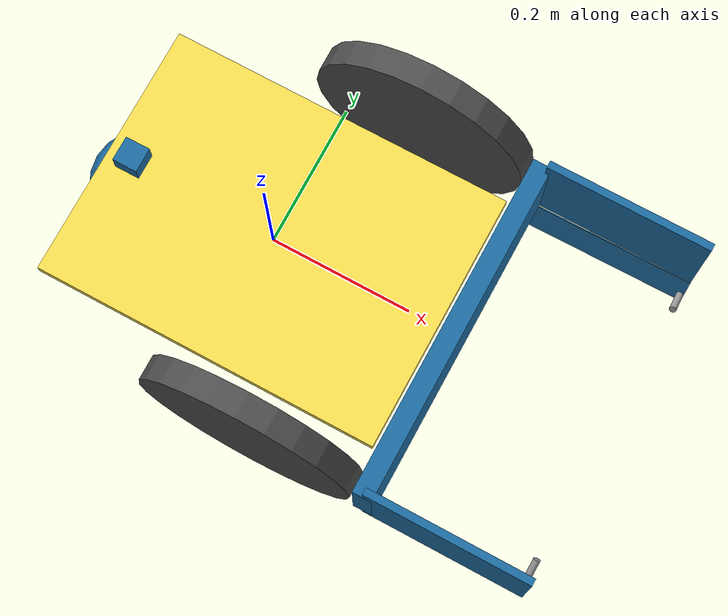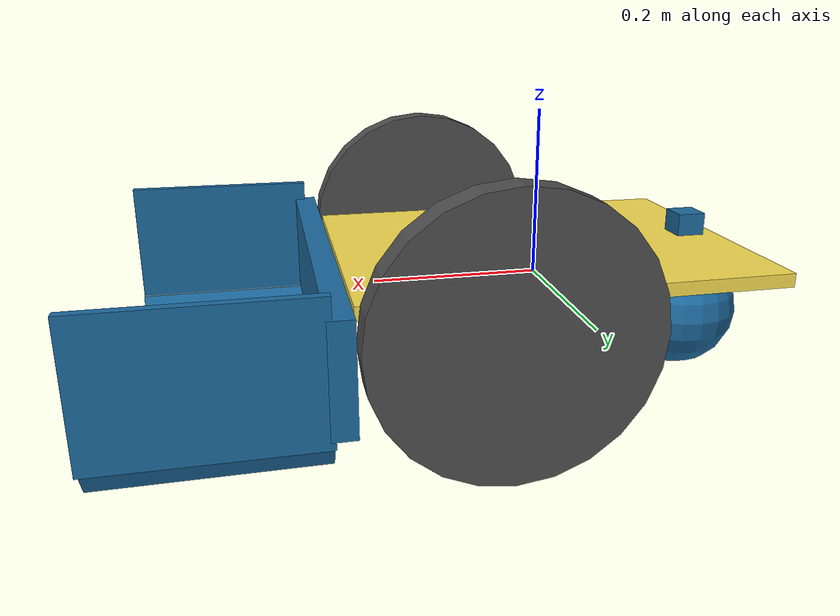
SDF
<?xml version='1.0'?>
<sdf version='1.6'>
  <model name='blue_1'>

    <include>
      <uri>model://minion</uri>
    </include>

    <plugin name='diff_drive' filename='libFRCBlueDiffDrivePlugin.so'>
      <topic>/blue/joy1</topic>
      <torque>2.0</torque>
      <turn_rate>1.3</turn_rate>
    </plugin>

    <plugin name='gripper' filename='libFRCBlueGripperPlugin.so'>
      <topic>/blue/joy1</topic>
      <left>minion::link_0_0_JOINT_3</left>
      <right>minion::link_0_0_JOINT_2</right>
      <up>minion::link_1_JOINT_4</up>
    </plugin>
  </model>
</sdf>

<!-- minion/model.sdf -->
<sdf version='1.6'>
  <model name='minion'>
    <link name='link_1'>
      <pose frame=''>0.003148 -0.001669 0.029855 0 -0 0</pose>
      <inertial>
        <mass>21.2305</mass>
        <inertia>
          <ixx>0.232716</ixx>
          <ixy>0</ixy>
          <ixz>0</ixz>
          <iyy>0.416476</iyy>
          <iyz>0</iyz>
          <izz>0.648297</izz>
        </inertia>
        <pose frame=''>0 0 0 0 -0 0</pose>
      </inertial>
      <self_collide>0</self_collide>
      <kinematic>0</kinematic>
      <enable_wind>0</enable_wind>
      <gravity>1</gravity>
      <visual name='visual'>
        <pose frame=''>0 0 0 0 -0 0</pose>
        <geometry>
          <box>
            <size>0.484922 0.362331 0.015899</size>
          </box>
        </geometry>
        <material>
          <lighting>1</lighting>
          <script>
            <uri>file://media/materials/scripts/gazebo.material</uri>
            <name>Gazebo/Grey</name>
          </script>
          <ambient>0.96 0.86 0.31 1</ambient>
          <diffuse>0.96 0.86 0.31 1</diffuse>
          <specular>0.96 0.86 0.31 1</specular>
          <emissive>0 0 0 1</emissive>
          <shader type='vertex'>
            <normal_map>__default__</normal_map>
          </shader>
        </material>
        <cast_shadows>1</cast_shadows>
        <transparency>0</transparency>
      </visual>
      <collision name='collision'>
        <laser_retro>0</laser_retro>
        <max_contacts>10</max_contacts>
        <pose frame=''>0 0 0 0 -0 0</pose>
        <geometry>
          <box>
            <size>0.484922 0.362331 0.015899</size>
          </box>
        </geometry>
        <surface>
          <friction>
            <ode>
              <mu>1</mu>
              <mu2>1</mu2>
              <fdir1>0 0 0</fdir1>
              <slip1>0</slip1>
              <slip2>0</slip2>
            </ode>
            <torsional>
              <coefficient>1</coefficient>
              <patch_radius>0</patch_radius>
              <surface_radius>0</surface_radius>
              <use_patch_radius>1</use_patch_radius>
              <ode>
                <slip>0</slip>
              </ode>
            </torsional>
          </friction>
          <bounce>
            <restitution_coefficient>0</restitution_coefficient>
            <threshold>1e+06</threshold>
          </bounce>
          <contact>
            <collide_without_contact>0</collide_without_contact>
            <collide_without_contact_bitmask>1</collide_without_contact_bitmask>
            <collide_bitmask>1</collide_bitmask>
            <ode>
              <kp>1e+8</kp>
              <kd>1</kd>
              <max_vel>10000.0</max_vel>
              <min_depth>0.002</min_depth>
            </ode>
            <bullet>
              <split_impulse>1</split_impulse>
              <split_impulse_penetration_threshold>-0.01</split_impulse_penetration_threshold>
              <soft_cfm>0</soft_cfm>
              <soft_erp>0.2</soft_erp>
              <kp>1e+13</kp>
              <kd>1</kd>
            </bullet>
          </contact>
        </surface>
      </collision>
    </link>
    <link name='link_0'>
      <inertial>
        <mass>30</mass>
        <inertia>
          <ixx>0.00599099</ixx>
          <ixy>0</ixy>
          <ixz>0</ixz>
          <iyy>0.00599099</iyy>
          <iyz>0</iyz>
          <izz>0.00599099</izz>
        </inertia>
        <pose frame=''>0 0 0 0 -0 0</pose>
      </inertial>
      <pose frame=''>-0.202994 -0.001415 0.048032 1e-06 -0.001232 -0.001231</pose>
      <gravity>1</gravity>
      <self_collide>0</self_collide>
      <kinematic>0</kinematic>
      <enable_wind>0</enable_wind>
      <visual name='visual'>
        <pose frame=''>0 0 0 0 -0 0</pose>
        <geometry>
          <box>
            <size>0.034615 0.034615 0.034615</size>
          </box>
        </geometry>
        <material>
          <lighting>1</lighting>
          <script>
            <uri>file://media/materials/scripts/gazebo.material</uri>
            <name>Gazebo/Grey</name>
          </script>
          <ambient>0.11 0.416 0.624 1</ambient>
          <diffuse>0.11 0.416 0.624 1</diffuse>
          <specular>0.11 0.416 0.624 1</specular>
          <emissive>0 0 0 1</emissive>
          <shader type='vertex'>
            <normal_map>__default__</normal_map>
          </shader>
        </material>
        <cast_shadows>1</cast_shadows>
        <transparency>0</transparency>
      </visual>
      <collision name='collision'>
        <laser_retro>0</laser_retro>
        <max_contacts>10</max_contacts>
        <pose frame=''>0 0 0 0 -0 0</pose>
        <geometry>
          <box>
            <size>0.034615 0.034615 0.034615</size>
          </box>
        </geometry>
        <surface>
          <friction>
            <ode>
              <mu>1</mu>
              <mu2>1</mu2>
              <fdir1>0 0 0</fdir1>
              <slip1>0</slip1>
              <slip2>0</slip2>
            </ode>
            <torsional>
              <coefficient>1</coefficient>
              <patch_radius>0</patch_radius>
              <surface_radius>0</surface_radius>
              <use_patch_radius>1</use_patch_radius>
              <ode>
                <slip>0</slip>
              </ode>
            </torsional>
          </friction>
          <bounce>
            <restitution_coefficient>0</restitution_coefficient>
            <threshold>1e+06</threshold>
          </bounce>
          <contact>
            <collide_without_contact>0</collide_without_contact>
            <collide_without_contact_bitmask>1</collide_without_contact_bitmask>
            <collide_bitmask>1</collide_bitmask>
            <ode>
              <soft_cfm>0</soft_cfm>
              <soft_erp>0.2</soft_erp>
              <kp>1e+13</kp>
              <kd>1</kd>
              <max_vel>0.01</max_vel>
              <min_depth>0</min_depth>
            </ode>
            <bullet>
              <split_impulse>1</split_impulse>
              <split_impulse_penetration_threshold>-0.01</split_impulse_penetration_threshold>
              <soft_cfm>0</soft_cfm>
              <soft_erp>0.2</soft_erp>
              <kp>1e+13</kp>
              <kd>1</kd>
            </bullet>
          </contact>
        </surface>
      </collision>
    </link>
    <link name='link_0_0'>
      <inertial>
        <mass>12.5433</mass>
        <inertia>
          <ixx>0.265335</ixx>
          <ixy>0</ixy>
          <ixz>0</ixz>
          <iyy>0.0163848</iyy>
          <iyz>0</iyz>
          <izz>0.250465</izz>
        </inertia>
        <pose frame=''>0 0 0 0 -0 0</pose>
      </inertial>
      <pose frame=''>0.264518 -0.001669 -0.011464 0 -0 0</pose>
      <gravity>1</gravity>
      <self_collide>0</self_collide>
      <kinematic>0</kinematic>
      <enable_wind>0</enable_wind>
      <visual name='visual'>
        <pose frame=''>0 0 0 0 -0 0</pose>
        <geometry>
          <box>
            <size>0.026908 0.488767 0.122274</size>
          </box>
        </geometry>
        <material>
          <lighting>1</lighting>
          <script>
            <uri>file://media/materials/scripts/gazebo.material</uri>
            <name>Gazebo/Grey</name>
          </script>
          <ambient>0.11 0.416 0.624 1</ambient>
          <diffuse>0.11 0.416 0.624 1</diffuse>
          <specular>0.11 0.416 0.624 1</specular>
          <emissive>0 0 0 1</emissive>
          <shader type='vertex'>
            <normal_map>__default__</normal_map>
          </shader>
        </material>
        <cast_shadows>1</cast_shadows>
        <transparency>0</transparency>
      </visual>
      <collision name='collision'>
        <laser_retro>0</laser_retro>
        <max_contacts>10</max_contacts>
        <pose frame=''>0 0 0 0 -0 0</pose>
        <geometry>
          <box>
            <size>0.026908 0.488767 0.122274</size>
          </box>
        </geometry>
        <surface>
          <friction>
            <ode>
              <mu>1</mu>
              <mu2>1</mu2>
              <fdir1>0 0 0</fdir1>
              <slip1>0</slip1>
              <slip2>0</slip2>
            </ode>
            <torsional>
              <coefficient>1</coefficient>
              <patch_radius>0</patch_radius>
              <surface_radius>0</surface_radius>
              <use_patch_radius>1</use_patch_radius>
              <ode>
                <slip>0</slip>
              </ode>
            </torsional>
          </friction>
          <bounce>
            <restitution_coefficient>0</restitution_coefficient>
            <threshold>1e+06</threshold>
          </bounce>
          <contact>
            <collide_without_contact>0</collide_without_contact>
            <collide_without_contact_bitmask>1</collide_without_contact_bitmask>
            <collide_bitmask>1</collide_bitmask>
            <ode>
              <soft_cfm>0</soft_cfm>
              <soft_erp>0.2</soft_erp>
              <kp>1e+13</kp>
              <kd>1</kd>
              <max_vel>0.01</max_vel>
              <min_depth>0</min_depth>
            </ode>
            <bullet>
              <split_impulse>1</split_impulse>
              <split_impulse_penetration_threshold>-0.01</split_impulse_penetration_threshold>
              <soft_cfm>0</soft_cfm>
              <soft_erp>0.2</soft_erp>
              <kp>1e+13</kp>
              <kd>1</kd>
            </bullet>
          </contact>
        </surface>
      </collision>
    </link>
    <link name='link_0_1'>
      <inertial>
        <mass>0.0191764</mass>
        <inertia>
          <ixx>1.77e-06</ixx>
          <ixy>0</ixy>
          <ixz>0</ixz>
          <iyy>1.77e-06</iyy>
          <iyz>0</iyz>
          <izz>2.3e-07</izz>
        </inertia>
        <pose frame=''>0 0 0 0 -0 0</pose>
      </inertial>
      <pose frame=''>0.492814 -0.206726 -0.095106 -1.03774 0.001803 0.005046</pose>
      <self_collide>0</self_collide>
      <enable_wind>0</enable_wind>
      <kinematic>0</kinematic>
      <gravity>1</gravity>
      <visual name='visual'>
        <pose frame=''>0 0 0 0 -0 0</pose>
        <geometry>
          <cylinder>
            <radius>0.00492896</radius>
            <length>0.0322109</length>
          </cylinder>
        </geometry>
        <material>
          <lighting>1</lighting>
          <script>
            <uri>file://media/materials/scripts/gazebo.material</uri>
            <name>Gazebo/Grey</name>
          </script>
          <ambient>0.3 0.3 0.3 1</ambient>
          <diffuse>0.1 0.1 0.1 1</diffuse>
          <specular>0.01 0.01 0.01 1</specular>
          <emissive>0 0 0 1</emissive>
          <shader type='vertex'>
            <normal_map>__default__</normal_map>
          </shader>
        </material>
        <cast_shadows>1</cast_shadows>
        <transparency>0</transparency>
      </visual>
      <collision name='collision'>
        <laser_retro>0</laser_retro>
        <max_contacts>10</max_contacts>
        <pose frame=''>0 0 0 0 -0 0</pose>
        <geometry>
          <cylinder>
            <radius>0.004929</radius>
            <length>0.032211</length>
          </cylinder>
        </geometry>
        <surface>
          <friction>
            <ode>
              <mu>1</mu>
              <mu2>1</mu2>
              <fdir1>0 0 0</fdir1>
              <slip1>0</slip1>
              <slip2>0</slip2>
            </ode>
            <torsional>
              <coefficient>1</coefficient>
              <patch_radius>0</patch_radius>
              <surface_radius>0</surface_radius>
              <use_patch_radius>1</use_patch_radius>
              <ode>
                <slip>0</slip>
              </ode>
            </torsional>
          </friction>
          <bounce>
            <restitution_coefficient>0</restitution_coefficient>
            <threshold>1e+06</threshold>
          </bounce>
          <contact>
            <collide_without_contact>0</collide_without_contact>
            <collide_without_contact_bitmask>1</collide_without_contact_bitmask>
            <collide_bitmask>1</collide_bitmask>
            <ode>
              <kp>1e+8</kp>
              <kd>1</kd>
              <max_vel>10000.0</max_vel>
              <min_depth>0.002</min_depth>
            </ode>
            <bullet>
              <split_impulse>1</split_impulse>
              <split_impulse_penetration_threshold>-0.01</split_impulse_penetration_threshold>
              <soft_cfm>0</soft_cfm>
              <soft_erp>0.2</soft_erp>
              <kp>1e+13</kp>
              <kd>1</kd>
            </bullet>
          </contact>
        </surface>
      </collision>
    </link>
    <link name='link_0_1_clone'>
      <inertial>
        <mass>0.0191764</mass>
        <inertia>
          <ixx>1.77e-06</ixx>
          <ixy>0</ixy>
          <ixz>0</ixz>
          <iyy>1.77e-06</iyy>
          <iyz>0</iyz>
          <izz>2.3e-07</izz>
        </inertia>
        <pose frame=''>0 0 0 0 -0 0</pose>
      </inertial>
      <pose frame=''>0.500276 0.203183 -0.094214 -2.10386 0.000574 0.00619</pose>
      <self_collide>0</self_collide>
      <enable_wind>0</enable_wind>
      <kinematic>0</kinematic>
      <gravity>1</gravity>
      <visual name='visual'>
        <pose frame=''>0 0 0 0 -0 0</pose>
        <geometry>
          <cylinder>
            <radius>0.00492896</radius>
            <length>0.0322109</length>
          </cylinder>
        </geometry>
        <material>
          <lighting>1</lighting>
          <script>
            <uri>file://media/materials/scripts/gazebo.material</uri>
            <name>Gazebo/Grey</name>
          </script>
          <ambient>0.3 0.3 0.3 1</ambient>
          <diffuse>0.1 0.1 0.1 1</diffuse>
          <specular>0.01 0.01 0.01 1</specular>
          <emissive>0 0 0 1</emissive>
          <shader type='pixel'>
            <normal_map>__default__</normal_map>
          </shader>
        </material>
        <cast_shadows>1</cast_shadows>
        <transparency>0</transparency>
      </visual>
      <collision name='collision'>
        <laser_retro>0</laser_retro>
        <max_contacts>10</max_contacts>
        <pose frame=''>0 0 0 0 -0 0</pose>
        <geometry>
          <cylinder>
            <radius>0.004929</radius>
            <length>0.032211</length>
          </cylinder>
        </geometry>
        <surface>
          <friction>
            <ode>
              <mu>1</mu>
              <mu2>1</mu2>
              <fdir1>0 0 0</fdir1>
              <slip1>0</slip1>
              <slip2>0</slip2>
            </ode>
            <torsional>
              <coefficient>1</coefficient>
              <patch_radius>0</patch_radius>
              <surface_radius>0</surface_radius>
              <use_patch_radius>1</use_patch_radius>
              <ode>
                <slip>0</slip>
              </ode>
            </torsional>
          </friction>
          <bounce>
            <restitution_coefficient>0</restitution_coefficient>
            <threshold>1e+06</threshold>
          </bounce>
          <contact>
            <collide_without_contact>0</collide_without_contact>
            <collide_without_contact_bitmask>1</collide_without_contact_bitmask>
            <collide_bitmask>1</collide_bitmask>
            <ode>
              <soft_cfm>0</soft_cfm>
              <soft_erp>0.2</soft_erp>
              <kp>1e+13</kp>
              <kd>1</kd>
              <max_vel>0.01</max_vel>
              <min_depth>0</min_depth>
            </ode>
            <bullet>
              <split_impulse>1</split_impulse>
              <split_impulse_penetration_threshold>-0.01</split_impulse_penetration_threshold>
              <soft_cfm>0</soft_cfm>
              <soft_erp>0.2</soft_erp>
              <kp>1e+13</kp>
              <kd>1</kd>
            </bullet>
          </contact>
        </surface>
      </collision>
    </link>
    <link name='link_1_0'>
      <inertial>
        <mass>2.86556</mass>
        <inertia>
          <ixx>0.0185877</ixx>
          <ixy>0</ixy>
          <ixz>0</ixz>
          <iyy>0.00570861</iyy>
          <iyz>0</iyz>
          <izz>0.0129292</izz>
        </inertia>
        <pose frame=''>0 0 0 0 -0 0</pose>
      </inertial>
      <pose frame=''>0.38151 -0.24093 -0.003563 0 -0 1.5708</pose>
      <gravity>1</gravity>
      <self_collide>0</self_collide>
      <kinematic>0</kinematic>
      <enable_wind>0</enable_wind>
      <visual name='visual'>
        <pose frame=''>0 0 0 0 -0 0</pose>
        <geometry>
          <box>
            <size>0.010244 0.232461 0.154275</size>
          </box>
        </geometry>
        <material>
          <lighting>1</lighting>
          <script>
            <uri>file://media/materials/scripts/gazebo.material</uri>
            <name>Gazebo/Grey</name>
          </script>
          <ambient>0.11 0.416 0.624 1</ambient>
          <diffuse>0.11 0.416 0.624 1</diffuse>
          <specular>0.11 0.416 0.624 1</specular>
          <emissive>0 0 0 1</emissive>
          <shader type='vertex'>
            <normal_map>__default__</normal_map>
          </shader>
        </material>
        <cast_shadows>1</cast_shadows>
        <transparency>0</transparency>
      </visual>
      <collision name='collision'>
        <laser_retro>0</laser_retro>
        <max_contacts>10</max_contacts>
        <pose frame=''>0 0 0 0 -0 0</pose>
        <geometry>
          <box>
            <size>0.010244 0.232461 0.154275</size>
          </box>
        </geometry>
        <surface>
          <friction>
            <ode>
              <mu>1</mu>
              <mu2>1</mu2>
              <fdir1>0 0 0</fdir1>
              <slip1>0</slip1>
              <slip2>0</slip2>
            </ode>
            <torsional>
              <coefficient>1</coefficient>
              <patch_radius>0</patch_radius>
              <surface_radius>0</surface_radius>
              <use_patch_radius>1</use_patch_radius>
              <ode>
                <slip>0</slip>
              </ode>
            </torsional>
          </friction>
          <bounce>
            <restitution_coefficient>0</restitution_coefficient>
            <threshold>1e+06</threshold>
          </bounce>
          <contact>
            <collide_without_contact>0</collide_without_contact>
            <collide_without_contact_bitmask>1</collide_without_contact_bitmask>
            <collide_bitmask>1</collide_bitmask>
            <ode>
              <soft_cfm>0</soft_cfm>
              <soft_erp>0.2</soft_erp>
              <kp>1e+13</kp>
              <kd>1</kd>
              <max_vel>0.01</max_vel>
              <min_depth>0</min_depth>
            </ode>
            <bullet>
              <split_impulse>1</split_impulse>
              <split_impulse_penetration_threshold>-0.01</split_impulse_penetration_threshold>
              <soft_cfm>0</soft_cfm>
              <soft_erp>0.2</soft_erp>
              <kp>1e+13</kp>
              <kd>1</kd>
            </bullet>
          </contact>
        </surface>
      </collision>
    </link>
    <link name='link_1_0_clone'>
      <inertial>
        <mass>2.86556</mass>
        <inertia>
          <ixx>0.0185877</ixx>
          <ixy>0</ixy>
          <ixz>0</ixz>
          <iyy>0.00570861</iyy>
          <iyz>0</iyz>
          <izz>0.0129292</izz>
        </inertia>
        <pose frame=''>0 0 0 0 -0 0</pose>
      </inertial>
      <pose frame=''>0.388851 0.237592 -0.003563 0 -0 1.5708</pose>
      <gravity>1</gravity>
      <self_collide>0</self_collide>
      <kinematic>0</kinematic>
      <enable_wind>0</enable_wind>
      <visual name='visual_0'>
        <pose frame=''>0 0 0 0 -0 0</pose>
        <geometry>
          <box>
            <size>0.010244 0.232461 0.154275</size>
          </box>
        </geometry>
        <material>
          <lighting>1</lighting>
          <script>
            <uri>file://media/materials/scripts/gazebo.material</uri>
            <name>Gazebo/Grey</name>
          </script>
          <ambient>0.11 0.416 0.624 1</ambient>
          <diffuse>0.11 0.416 0.624 1</diffuse>
          <specular>0.11 0.416 0.624 1</specular>
          <emissive>0 0 0 1</emissive>
          <shader type='vertex'>
            <normal_map>__default__</normal_map>
          </shader>
        </material>
        <cast_shadows>1</cast_shadows>
        <transparency>0</transparency>
      </visual>
      <collision name='collision'>
        <laser_retro>0</laser_retro>
        <max_contacts>10</max_contacts>
        <pose frame=''>0 0 0 0 -0 0</pose>
        <geometry>
          <box>
            <size>0.010244 0.232461 0.154275</size>
          </box>
        </geometry>
        <surface>
          <friction>
            <ode>
              <mu>1</mu>
              <mu2>1</mu2>
              <fdir1>0 0 0</fdir1>
              <slip1>0</slip1>
              <slip2>0</slip2>
            </ode>
            <torsional>
              <coefficient>1</coefficient>
              <patch_radius>0</patch_radius>
              <surface_radius>0</surface_radius>
              <use_patch_radius>1</use_patch_radius>
              <ode>
                <slip>0</slip>
              </ode>
            </torsional>
          </friction>
          <bounce>
            <restitution_coefficient>0</restitution_coefficient>
            <threshold>1e+06</threshold>
          </bounce>
          <contact>
            <collide_without_contact>0</collide_without_contact>
            <collide_without_contact_bitmask>1</collide_without_contact_bitmask>
            <collide_bitmask>1</collide_bitmask>
            <ode>
              <soft_cfm>0</soft_cfm>
              <soft_erp>0.2</soft_erp>
              <kp>1e+13</kp>
              <kd>1</kd>
              <max_vel>0.01</max_vel>
              <min_depth>0</min_depth>
            </ode>
            <bullet>
              <split_impulse>1</split_impulse>
              <split_impulse_penetration_threshold>-0.01</split_impulse_penetration_threshold>
              <soft_cfm>0</soft_cfm>
              <soft_erp>0.2</soft_erp>
              <kp>1e+13</kp>
              <kd>1</kd>
            </bullet>
          </contact>
        </surface>
      </collision>
    </link>
    <link name='link_1_0_clone_0'>
      <inertial>
        <mass>0.105299</mass>
        <inertia>
          <ixx>0.00048559</ixx>
          <ixy>0</ixy>
          <ixz>0</ixz>
          <iyy>1.143e-05</iyy>
          <iyz>0</iyz>
          <izz>0.00047421</izz>
        </inertia>
        <pose frame=''>0 0 0 0 -0 0</pose>
      </inertial>
      <pose frame=''>0.381575 -0.225555 -0.096791 -0.001426 -0.533056 1.57478</pose>
      <gravity>1</gravity>
      <self_collide>0</self_collide>
      <kinematic>0</kinematic>
      <enable_wind>0</enable_wind>
      <visual name='visual'>
        <pose frame=''>0 0 0 0 -0 0</pose>
        <geometry>
          <box>
            <size>0.001653 0.232461 0.036057</size>
          </box>
        </geometry>
        <material>
          <lighting>1</lighting>
          <script>
            <uri>file://media/materials/scripts/gazebo.material</uri>
            <name>Gazebo/Grey</name>
          </script>
          <ambient>0.11 0.416 0.624 1</ambient>
          <diffuse>0.11 0.416 0.624 1</diffuse>
          <specular>0.11 0.416 0.624 1</specular>
          <emissive>0 0 0 1</emissive>
          <shader type='vertex'>
            <normal_map>__default__</normal_map>
          </shader>
        </material>
        <cast_shadows>1</cast_shadows>
        <transparency>0</transparency>
      </visual>
      <collision name='collision'>
        <laser_retro>0</laser_retro>
        <max_contacts>10</max_contacts>
        <pose frame=''>0 0 0 0 -0 0</pose>
        <geometry>
          <box>
            <size>0.001653 0.232461 0.036057</size>
          </box>
        </geometry>
        <surface>
          <friction>
            <ode>
              <mu>1</mu>
              <mu2>1</mu2>
              <fdir1>0 0 0</fdir1>
              <slip1>0</slip1>
              <slip2>0</slip2>
            </ode>
            <torsional>
              <coefficient>1</coefficient>
              <patch_radius>0</patch_radius>
              <surface_radius>0</surface_radius>
              <use_patch_radius>1</use_patch_radius>
              <ode>
                <slip>0</slip>
              </ode>
            </torsional>
          </friction>
          <bounce>
            <restitution_coefficient>0</restitution_coefficient>
            <threshold>1e+06</threshold>
          </bounce>
          <contact>
            <collide_without_contact>0</collide_without_contact>
            <collide_without_contact_bitmask>1</collide_without_contact_bitmask>
            <collide_bitmask>1</collide_bitmask>
            <ode>
              <soft_cfm>0</soft_cfm>
              <soft_erp>0.2</soft_erp>
              <kp>1e+13</kp>
              <kd>1</kd>
              <max_vel>0.01</max_vel>
              <min_depth>0</min_depth>
            </ode>
            <bullet>
              <split_impulse>1</split_impulse>
              <split_impulse_penetration_threshold>-0.01</split_impulse_penetration_threshold>
              <soft_cfm>0</soft_cfm>
              <soft_erp>0.2</soft_erp>
              <kp>1e+13</kp>
              <kd>1</kd>
            </bullet>
          </contact>
        </surface>
      </collision>
    </link>
    <link name='link_1_0_clone_0_clone'>
      <inertial>
        <mass>0.105299</mass>
        <inertia>
          <ixx>0.00048559</ixx>
          <ixy>0</ixy>
          <ixz>0</ixz>
          <iyy>1.143e-05</iyy>
          <iyz>0</iyz>
          <izz>0.00047421</izz>
        </inertia>
        <pose frame=''>0 0 0 0 -0 0</pose>
      </inertial>
      <pose frame=''>0.389016 0.221838 -0.096313 -2e-06 -0.533062 -1.56427</pose>
      <gravity>1</gravity>
      <self_collide>0</self_collide>
      <kinematic>0</kinematic>
      <enable_wind>0</enable_wind>
      <visual name='visual'>
        <pose frame=''>0 0 0 0 -0 0</pose>
        <geometry>
          <box>
            <size>0.001653 0.232461 0.036057</size>
          </box>
        </geometry>
        <material>
          <lighting>1</lighting>
          <script>
            <uri>file://media/materials/scripts/gazebo.material</uri>
            <name>Gazebo/Grey</name>
          </script>
          <ambient>0.11 0.416 0.624 1</ambient>
          <diffuse>0.11 0.416 0.624 1</diffuse>
          <specular>0.11 0.416 0.624 1</specular>
          <emissive>0 0 0 1</emissive>
          <shader type='vertex'>
            <normal_map>__default__</normal_map>
          </shader>
        </material>
        <cast_shadows>1</cast_shadows>
        <transparency>0</transparency>
      </visual>
      <collision name='collision'>
        <laser_retro>0</laser_retro>
        <max_contacts>10</max_contacts>
        <pose frame=''>0 0 0 0 -0 0</pose>
        <geometry>
          <box>
            <size>0.001653 0.232461 0.036057</size>
          </box>
        </geometry>
        <surface>
          <friction>
            <ode>
              <mu>1</mu>
              <mu2>1</mu2>
              <fdir1>0 0 0</fdir1>
              <slip1>0</slip1>
              <slip2>0</slip2>
            </ode>
            <torsional>
              <coefficient>1</coefficient>
              <patch_radius>0</patch_radius>
              <surface_radius>0</surface_radius>
              <use_patch_radius>1</use_patch_radius>
              <ode>
                <slip>0</slip>
              </ode>
            </torsional>
          </friction>
          <bounce>
            <restitution_coefficient>0</restitution_coefficient>
            <threshold>1e+06</threshold>
          </bounce>
          <contact>
            <collide_without_contact>0</collide_without_contact>
            <collide_without_contact_bitmask>1</collide_without_contact_bitmask>
            <collide_bitmask>1</collide_bitmask>
            <ode>
              <soft_cfm>0</soft_cfm>
              <soft_erp>0.2</soft_erp>
              <kp>1e+13</kp>
              <kd>1</kd>
              <max_vel>0.01</max_vel>
              <min_depth>0</min_depth>
            </ode>
            <bullet>
              <split_impulse>1</split_impulse>
              <split_impulse_penetration_threshold>-0.01</split_impulse_penetration_threshold>
              <soft_cfm>0</soft_cfm>
              <soft_erp>0.2</soft_erp>
              <kp>1e+13</kp>
              <kd>1</kd>
            </bullet>
          </contact>
        </surface>
      </collision>
    </link>
    <link name='link_2_clone'>
      <pose frame=''>0.097443 -0.23143 0.015119 1.5708 -0 0</pose>
      <inertial>
        <mass>19.4522</mass>
        <inertia>
          <ixx>0.113684</ixx>
          <ixy>0</ixy>
          <ixz>0</ixz>
          <iyy>0.113684</iyy>
          <iyz>0</iyz>
          <izz>0.223285</izz>
        </inertia>
        <pose frame=''>0 0 0 0 -0 0</pose>
      </inertial>
      <self_collide>0</self_collide>
      <kinematic>0</kinematic>
      <velocity_decay>
        <angular>0.1</angular>
      </velocity_decay>
      <enable_wind>0</enable_wind>
      <gravity>1</gravity>
      <visual name='visual'>
        <pose frame=''>0 0 0 0 -0 0</pose>
        <geometry>
          <cylinder>
            <radius>0.151517</radius>
            <length>0.035488</length>
          </cylinder>
        </geometry>
        <material>
          <lighting>1</lighting>
          <script>
            <uri>file://media/materials/scripts/gazebo.material</uri>
            <name>Gazebo/DarkGrey</name>
          </script>
          <ambient>0.3 0.3 0.3 1</ambient>
          <diffuse>0.1 0.1 0.1 1</diffuse>
          <specular>0.01 0.01 0.01 1</specular>
          <emissive>0 0 0 1</emissive>
          <shader type='vertex'>
            <normal_map>__default__</normal_map>
          </shader>
        </material>
        <cast_shadows>1</cast_shadows>
        <transparency>0</transparency>
      </visual>
      <collision name='collision'>
        <laser_retro>0</laser_retro>
        <max_contacts>10</max_contacts>
        <pose frame=''>0 0 0 0 -0 0</pose>
        <geometry>
          <cylinder>
            <radius>0.151517</radius>
            <length>0.035488</length>
          </cylinder>
        </geometry>
        <surface>
          <friction>
            <ode>
              <mu>1</mu>
              <mu2>1</mu2>
              <fdir1>0 0 0</fdir1>
              <slip1>0</slip1>
              <slip2>0</slip2>
            </ode>
            <torsional>
              <coefficient>1</coefficient>
              <patch_radius>0</patch_radius>
              <surface_radius>0</surface_radius>
              <use_patch_radius>1</use_patch_radius>
              <ode>
                <slip>0</slip>
              </ode>
            </torsional>
          </friction>
          <bounce>
            <restitution_coefficient>0</restitution_coefficient>
            <threshold>1e+06</threshold>
          </bounce>
          <contact>
            <collide_without_contact>0</collide_without_contact>
            <collide_without_contact_bitmask>1</collide_without_contact_bitmask>
            <collide_bitmask>1</collide_bitmask>
            <ode>
              <soft_cfm>0</soft_cfm>
              <soft_erp>0.2</soft_erp>
              <kp>1e+13</kp>
              <kd>1</kd>
              <max_vel>0.01</max_vel>
              <min_depth>0</min_depth>
            </ode>
            <bullet>
              <split_impulse>1</split_impulse>
              <split_impulse_penetration_threshold>-0.01</split_impulse_penetration_threshold>
              <soft_cfm>0</soft_cfm>
              <soft_erp>0.2</soft_erp>
              <kp>1e+13</kp>
              <kd>1</kd>
            </bullet>
          </contact>
        </surface>
      </collision>
    </link>
    <link name='link_2_clone_1'>
      <pose frame=''>0.097443 0.234768 0.015119 1.5708 -0 0</pose>
      <inertial>
        <mass>19.4522</mass>
        <inertia>
          <ixx>0.113684</ixx>
          <ixy>0</ixy>
          <ixz>0</ixz>
          <iyy>0.113684</iyy>
          <iyz>0</iyz>
          <izz>0.223285</izz>
        </inertia>
        <pose frame=''>0 0 0 0 -0 0</pose>
      </inertial>
      <self_collide>0</self_collide>
      <kinematic>0</kinematic>
      <velocity_decay>
        <angular>0.1</angular>
      </velocity_decay>
      <enable_wind>0</enable_wind>
      <gravity>1</gravity>
      <visual name='visual'>
        <pose frame=''>0 0 0 0 -0 0</pose>
        <geometry>
          <cylinder>
            <radius>0.151517</radius>
            <length>0.035488</length>
          </cylinder>
        </geometry>
        <material>
          <lighting>1</lighting>
          <script>
            <uri>file://media/materials/scripts/gazebo.material</uri>
            <name>Gazebo/DarkGrey</name>
          </script>
          <ambient>0.3 0.3 0.3 1</ambient>
          <diffuse>0.1 0.1 0.1 1</diffuse>
          <specular>0.01 0.01 0.01 1</specular>
          <emissive>0 0 0 1</emissive>
          <shader type='pixel'>
            <normal_map>__default__</normal_map>
          </shader>
        </material>
        <cast_shadows>1</cast_shadows>
        <transparency>0</transparency>
      </visual>
      <collision name='collision'>
        <laser_retro>0</laser_retro>
        <max_contacts>10</max_contacts>
        <pose frame=''>0 0 0 0 -0 0</pose>
        <geometry>
          <cylinder>
            <radius>0.151517</radius>
            <length>0.035488</length>
          </cylinder>
        </geometry>
        <surface>
          <friction>
            <ode>
              <mu>1</mu>
              <mu2>1</mu2>
              <fdir1>0 0 0</fdir1>
              <slip1>0</slip1>
              <slip2>0</slip2>
            </ode>
            <torsional>
              <coefficient>1</coefficient>
              <patch_radius>0</patch_radius>
              <surface_radius>0</surface_radius>
              <use_patch_radius>1</use_patch_radius>
              <ode>
                <slip>0</slip>
              </ode>
            </torsional>
          </friction>
          <bounce>
            <restitution_coefficient>0</restitution_coefficient>
            <threshold>1e+06</threshold>
          </bounce>
          <contact>
            <collide_without_contact>0</collide_without_contact>
            <collide_without_contact_bitmask>1</collide_without_contact_bitmask>
            <collide_bitmask>1</collide_bitmask>
            <ode>
              <soft_cfm>0</soft_cfm>
              <soft_erp>0.2</soft_erp>
              <kp>1e+13</kp>
              <kd>1</kd>
              <max_vel>0.01</max_vel>
              <min_depth>0</min_depth>
            </ode>
            <bullet>
              <split_impulse>1</split_impulse>
              <split_impulse_penetration_threshold>-0.01</split_impulse_penetration_threshold>
              <soft_cfm>0</soft_cfm>
              <soft_erp>0.2</soft_erp>
              <kp>1e+13</kp>
              <kd>1</kd>
            </bullet>
          </contact>
        </surface>
      </collision>
    </link>
    <link name='link_3'>
      <pose frame=''>-0.198034 -0.001669 -0.060092 0 -0 0</pose>
      <inertial>
        <mass>14.7251</mass>
        <inertia>
          <ixx>0.0346235</ixx>
          <ixy>0</ixy>
          <ixz>0</ixz>
          <iyy>0.0346235</iyy>
          <iyz>0</iyz>
          <izz>0.0346235</izz>
        </inertia>
        <pose frame=''>0 0 0 0 -0 0</pose>
      </inertial>
      <self_collide>0</self_collide>
      <kinematic>0</kinematic>
      <enable_wind>0</enable_wind>
      <gravity>1</gravity>
      <visual name='visual'>
        <pose frame=''>0 0 0 0 -0 0</pose>
        <geometry>
          <sphere>
            <radius>0.07667</radius>
          </sphere>
        </geometry>
        <material>
          <lighting>1</lighting>
          <script>
            <uri>file://media/materials/scripts/gazebo.material</uri>
            <name>Gazebo/Grey</name>
          </script>
          <ambient>0.11 0.416 0.624 1</ambient>
          <diffuse>0.11 0.416 0.624 1</diffuse>
          <specular>0.11 0.416 0.624 1</specular>
          <emissive>0 0 0 1</emissive>
          <shader type='vertex'>
            <normal_map>__default__</normal_map>
          </shader>
        </material>
        <cast_shadows>1</cast_shadows>
        <transparency>0</transparency>
      </visual>
      <collision name='collision'>
        <laser_retro>0</laser_retro>
        <max_contacts>10</max_contacts>
        <pose frame=''>0 0 0 0 -0 0</pose>
        <geometry>
          <sphere>
            <radius>0.07667</radius>
          </sphere>
        </geometry>
        <surface>
          <friction>
            <ode>
              <mu>1</mu>
              <mu2>1</mu2>
              <fdir1>0 0 0</fdir1>
              <slip1>0</slip1>
              <slip2>0</slip2>
            </ode>
            <torsional>
              <coefficient>1</coefficient>
              <patch_radius>0</patch_radius>
              <surface_radius>0</surface_radius>
              <use_patch_radius>1</use_patch_radius>
              <ode>
                <slip>0</slip>
              </ode>
            </torsional>
          </friction>
          <bounce>
            <restitution_coefficient>0</restitution_coefficient>
            <threshold>1e+06</threshold>
          </bounce>
          <contact>
            <collide_without_contact>0</collide_without_contact>
            <collide_without_contact_bitmask>1</collide_without_contact_bitmask>
            <collide_bitmask>1</collide_bitmask>
            <ode>
              <soft_cfm>0</soft_cfm>
              <soft_erp>0.2</soft_erp>
              <kp>1e+13</kp>
              <kd>1</kd>
              <max_vel>0.01</max_vel>
              <min_depth>0</min_depth>
            </ode>
            <bullet>
              <split_impulse>1</split_impulse>
              <split_impulse_penetration_threshold>-0.01</split_impulse_penetration_threshold>
              <soft_cfm>0</soft_cfm>
              <soft_erp>0.2</soft_erp>
              <kp>1e+13</kp>
              <kd>1</kd>
            </bullet>
          </contact>
        </surface>
      </collision>
    </link>
    <joint name='link_0_0_JOINT_2' type='prismatic'>
      <parent>link_0_0</parent>
      <child>link_1_0</child>
      <pose frame=''>0 0 0 0 -0 0</pose>
      <axis>
        <xyz>1 0 0</xyz>
        <use_parent_model_frame>0</use_parent_model_frame>
        <limit>
          <lower>0</lower>
          <upper>0.125</upper>
          <effort>-1</effort>
          <velocity>-1</velocity>
        </limit>
        <dynamics>
          <spring_reference>0</spring_reference>
          <spring_stiffness>0</spring_stiffness>
          <damping>30</damping>
          <friction>0</friction>
        </dynamics>
      </axis>
      <physics>
        <ode>
          <limit>
            <cfm>0</cfm>
            <erp>0.2</erp>
          </limit>
          <suspension>
            <cfm>0</cfm>
            <erp>0.2</erp>
          </suspension>
        </ode>
      </physics>
    </joint>
    <joint name='link_0_0_JOINT_3' type='prismatic'>
      <parent>link_0_0</parent>
      <child>link_1_0_clone</child>
      <pose frame=''>0 0 0 0 -0 0</pose>
      <axis>
        <xyz>1 0 0</xyz>
        <use_parent_model_frame>0</use_parent_model_frame>
        <limit>
          <lower>-0.125</lower>
          <upper>0</upper>
          <effort>-1</effort>
          <velocity>-1</velocity>
        </limit>
        <dynamics>
          <spring_reference>0</spring_reference>
          <spring_stiffness>0</spring_stiffness>
          <damping>30</damping>
          <friction>0</friction>
        </dynamics>
      </axis>
      <physics>
        <ode>
          <limit>
            <cfm>0</cfm>
            <erp>0.2</erp>
          </limit>
          <suspension>
            <cfm>0</cfm>
            <erp>0.2</erp>
          </suspension>
        </ode>
      </physics>
    </joint>
    <joint name='link_1_0_JOINT_0' type='fixed'>
      <parent>link_1_0</parent>
      <child>link_1_0_clone_0</child>
      <pose frame=''>0 0 0 0 -0 0</pose>
      <physics>
        <ode>
          <limit>
            <cfm>0</cfm>
            <erp>0.2</erp>
          </limit>
          <suspension>
            <cfm>0</cfm>
            <erp>0.2</erp>
          </suspension>
        </ode>
      </physics>
    </joint>
    <joint name='link_1_0_clone_0_JOINT_1' type='fixed'>
      <parent>link_1_0_clone_0</parent>
      <child>link_0_1</child>
      <pose frame=''>0 0 0 0 -0 0</pose>
      <physics>
        <ode>
          <limit>
            <cfm>0</cfm>
            <erp>0.2</erp>
          </limit>
          <suspension>
            <cfm>0</cfm>
            <erp>0.2</erp>
          </suspension>
        </ode>
      </physics>
    </joint>
    <joint name='link_1_0_clone_0_clone_JOINT_0' type='fixed'>
      <parent>link_1_0_clone_0_clone</parent>
      <child>link_0_1_clone</child>
      <pose frame=''>0 0 0 0 -0 0</pose>
      <physics>
        <ode>
          <limit>
            <cfm>0</cfm>
            <erp>0.2</erp>
          </limit>
          <suspension>
            <cfm>0</cfm>
            <erp>0.2</erp>
          </suspension>
        </ode>
      </physics>
    </joint>
    <joint name='link_1_0_clone_JOINT_1' type='fixed'>
      <parent>link_1_0_clone</parent>
      <child>link_1_0_clone_0_clone</child>
      <pose frame=''>0 0 0 0 -0 0</pose>
      <physics>
        <ode>
          <limit>
            <cfm>0</cfm>
            <erp>0.2</erp>
          </limit>
          <suspension>
            <cfm>0</cfm>
            <erp>0.2</erp>
          </suspension>
        </ode>
      </physics>
    </joint>
    <joint name='link_1_JOINT_0' type='revolute'>
      <parent>link_1</parent>
      <child>link_2_clone</child>
      <pose frame=''>0 0 0 0 -0 0</pose>
      <axis>
        <xyz>0 0 1</xyz>
        <use_parent_model_frame>0</use_parent_model_frame>
        <limit>
          <lower>-1.79769e+308</lower>
          <upper>1.79769e+308</upper>
          <effort>-1</effort>
          <velocity>-1</velocity>
        </limit>
        <dynamics>
          <spring_reference>0</spring_reference>
          <spring_stiffness>0</spring_stiffness>
          <damping>0</damping>
          <friction>0</friction>
        </dynamics>
      </axis>
      <physics>
        <ode>
          <limit>
            <cfm>0</cfm>
            <erp>0.2</erp>
          </limit>
          <suspension>
            <cfm>0</cfm>
            <erp>0.2</erp>
          </suspension>
        </ode>
      </physics>
    </joint>
    <joint name='link_1_JOINT_1_0' type='fixed'>
      <parent>link_1</parent>
      <child>link_0</child>
      <pose frame=''>0 0 0 0 -0 0</pose>
      <physics>
        <ode>
          <limit>
            <cfm>0</cfm>
            <erp>0.2</erp>
          </limit>
          <suspension>
            <cfm>0</cfm>
            <erp>0.2</erp>
          </suspension>
        </ode>
      </physics>
    </joint>
    <joint name='link_1_JOINT_1' type='revolute'>
      <parent>link_1</parent>
      <child>link_2_clone_1</child>
      <pose frame=''>0 0 0 0 -0 0</pose>
      <axis>
        <xyz>0 0 1</xyz>
        <use_parent_model_frame>0</use_parent_model_frame>
        <limit>
          <lower>-1.79769e+308</lower>
          <upper>1.79769e+308</upper>
          <effort>-1</effort>
          <velocity>-1</velocity>
        </limit>
        <dynamics>
          <spring_reference>0</spring_reference>
          <spring_stiffness>0</spring_stiffness>
          <damping>0</damping>
          <friction>0</friction>
        </dynamics>
      </axis>
      <physics>
        <ode>
          <limit>
            <cfm>0</cfm>
            <erp>0.2</erp>
          </limit>
          <suspension>
            <cfm>0</cfm>
            <erp>0.2</erp>
          </suspension>
        </ode>
      </physics>
    </joint>
    <joint name='link_1_JOINT_2' type='ball'>
      <parent>link_1</parent>
      <child>link_3</child>
      <pose frame=''>0 0 0 0 -0 0</pose>
      <physics>
        <ode>
          <limit>
            <cfm>0</cfm>
            <erp>0.2</erp>
          </limit>
          <suspension>
            <cfm>0</cfm>
            <erp>0.2</erp>
          </suspension>
        </ode>
      </physics>
    </joint>
    <joint name='link_1_JOINT_4' type='prismatic'>
      <parent>link_1</parent>
      <child>link_0_0</child>
      <pose frame=''>0 0 0 0 -0 0</pose>
      <axis>
        <xyz>0 0 1</xyz>
        <use_parent_model_frame>0</use_parent_model_frame>
        <limit>
          <lower>0</lower>
          <upper>0.1</upper>
          <effort>-1</effort>
          <velocity>-1</velocity>
        </limit>
        <dynamics>
          <spring_reference>0</spring_reference>
          <spring_stiffness>0</spring_stiffness>
          <damping>5</damping>
          <friction>0</friction>
        </dynamics>
      </axis>
      <physics>
        <ode>
          <limit>
            <cfm>0</cfm>
            <erp>0.2</erp>
          </limit>
          <suspension>
            <cfm>0</cfm>
            <erp>0.2</erp>
          </suspension>
        </ode>
      </physics>
    </joint>
    <static>0</static>
    <allow_auto_disable>1</allow_auto_disable>
  </model>
</sdf>
